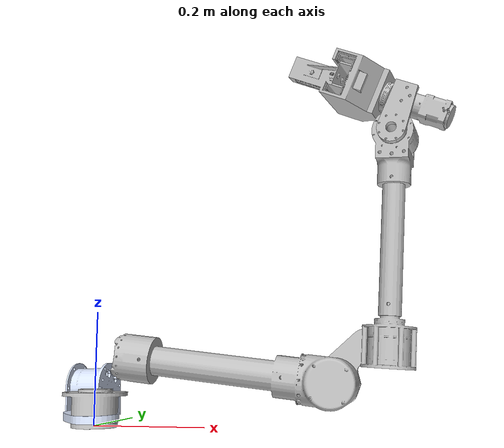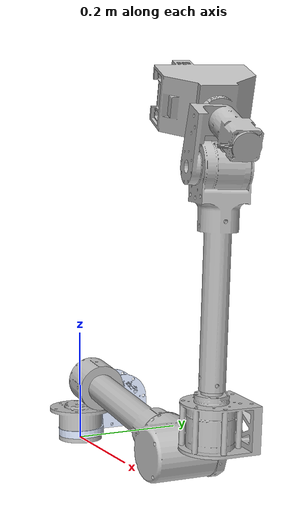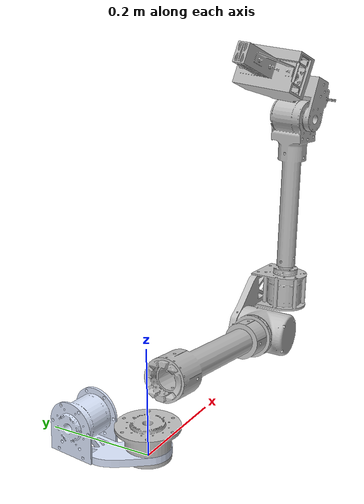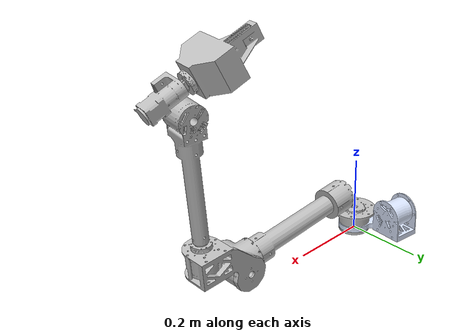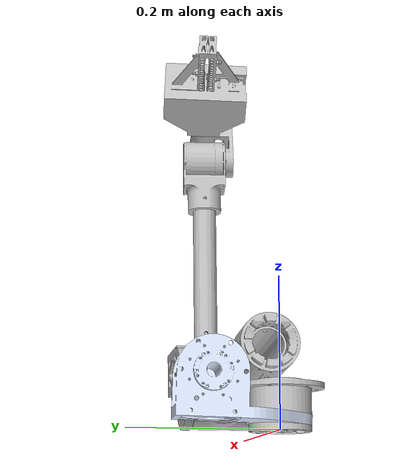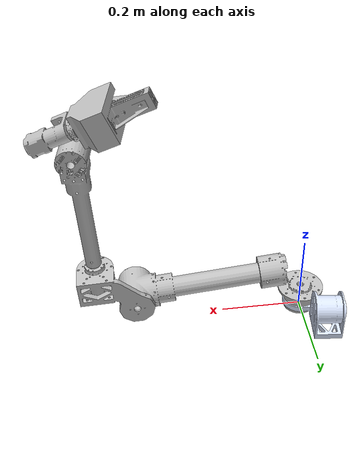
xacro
<?xml version="1.0"?>
<robot xmlns:xacro="http://www.ros.org/wiki/xacro" name="plex_arm_urdf">
    <xacro:arg name="initial_positions_file" default="initial_positions.yaml" />

    <!-- Import plex_arm_urdf urdf file -->
    <xacro:include filename="$(find plex_arm_urdf)/urdf/plex_arm_urdf.urdf.xacro" />

    <!-- Import control_xacro -->
    <xacro:include filename="plex_arm_urdf.ros2_control.xacro" />

    <xacro:plex_arm_urdf_ros2_control name="FakeSystem" initial_positions_file="$(arg initial_positions_file)"/>

</robot>

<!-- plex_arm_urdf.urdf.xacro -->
<robot name="plex_arm_urdf" xmlns:xacro="http://www.ros.org/wiki/xacro">

  <xacro:property name="mesh_pkg"  value="plex_arm_urdf" />
  <xacro:property name="grey_rgba" value="0.752941176470588 0.752941176470588 0.752941176470588 1" />
  <xacro:property name="blue_rgba" value="0.866666666666667 0.909803921568627 1 1" />

  <xacro:macro name="mesh_link" params="link_name colour_rgba">
    <visual>
      <origin xyz="0 0 0" rpy="0 0 0" />
      <geometry>
        <mesh filename="package://${mesh_pkg}/meshes/${link_name}.STL" />
      </geometry>
      <material name="">
        <color rgba="${colour_rgba}" />
      </material>
    </visual>
    <collision>
      <origin xyz="0 0 0" rpy="0 0 0" />
      <geometry>
        <mesh filename="package://${mesh_pkg}/meshes/${link_name}.STL" />
      </geometry>
    </collision>
  </xacro:macro>

  <link name="base_link">
    <inertial>
      <origin xyz="-2.24668715474809E-05 -1.58257547080611E-05 0.0374605334330578" rpy="0 0 0" />
      <mass value="0.399162910599266" />
      <inertia ixx="0.000324848144008975" ixy="5.02496168934537E-08"  ixz="-2.2819307788846E-07"
               iyy="0.00032521829975329"  iyz="-1.86758735473255E-07" izz="0.000486670512636318" />
    </inertial>
    <xacro:mesh_link link_name="base_link" colour_rgba="${grey_rgba}" />
  </link>

  <link name="link_2">
    <inertial>
      <origin xyz="0.00211380693052461 -0.0163292010184428 0.0524617953309156" rpy="0 0 0" />
      <mass value="1.01328478920139" />
      <inertia ixx="0.0014335374796131"   ixy="-1.42034367565708E-05" ixz="7.59212417839802E-06"
               iyy="0.00149901585148594"  iyz="0.000123243816752311"  izz="0.00141887427830969" />
    </inertial>
    <xacro:mesh_link link_name="link_2" colour_rgba="${blue_rgba}" />
  </link>

  <link name="link_3">
    <inertial>
      <origin xyz="0.26754 0.053738 -0.031859" rpy="0 0 0" />
      <mass value="1.3505" />
      <inertia ixx="0.0013405"  ixy="4.1403E-05"  ixz="0.0002258"
               iyy="0.0032102"  iyz="-5.27E-06"    izz="0.0031982" />
    </inertial>
    <xacro:mesh_link link_name="link_3" colour_rgba="${grey_rgba}" />
  </link>

  <link name="link_4">
    <inertial>
      <origin xyz="0.082946 -0.041589 0.059096" rpy="0 0 0" />
      <mass value="0.53981" />
      <inertia ixx="0.0004222"   ixy="7.614E-06"   ixz="-0.00010509"
               iyy="0.00066838"  iyz="6.346E-06"    izz="0.00062584" />
    </inertial>
    <xacro:mesh_link link_name="link_4" colour_rgba="${grey_rgba}" />
  </link>

  <link name="link_5">
    <inertial>
      <origin xyz="0.0151094033450188 -0.000660974117995889 0.237690494208005" rpy="0 0 0" />
      <mass value="0.564110995014379" />
      <inertia ixx="0.00115592730271326"  ixy="1.67194129071875E-06"  ixz="-5.47681647087195E-05"
               iyy="0.00116861926227325"  iyz="7.97231620979113E-07"  izz="0.000289359064405679" />
    </inertial>
    <xacro:mesh_link link_name="link_5" colour_rgba="${grey_rgba}" />
  </link>

  <link name="link_6">
    <inertial>
      <origin xyz="0.0373459001279738 -0.0166285861789171 0.0396973187118052" rpy="0 0 0" />
      <mass value="0.207074607999115" />
      <inertia ixx="8.79083922357743E-05"  ixy="1.49133619604232E-05"  ixz="2.64731989505346E-05"
               iyy="0.000155579377504894"  iyz="-6.0339185433965E-06"  izz="0.000127872997405193" />
    </inertial>
    <xacro:mesh_link link_name="link_6" colour_rgba="${grey_rgba}" />
  </link>

  <link name="EE_assembly">
    <inertial>
      <origin xyz="-0.0877843844322184 0.0125121324602962 0.0407814380552561" rpy="0 0 0" />
      <mass value="0.553543107403543" />
      <inertia ixx="0.000671410200888766"  ixy="-2.95206570267268E-07"  ixz="3.96900762821728E-05"
               iyy="0.000444631461300533"  iyz="-1.41204972937008E-05"  izz="0.000759972019619152" />
    </inertial>
    <xacro:mesh_link link_name="EE_assembly" colour_rgba="${grey_rgba}" />
  </link>

  <joint name="joint_1" type="continuous">
    <origin xyz="0 0 0.0641" rpy="0 0 0" />
    <parent link="base_link" />
    <child  link="link_2" />
    <axis   xyz="0 0 1" />
  </joint>

  <joint name="joint_2" type="continuous">
    <origin xyz="-0.0016216 -0.058978 0.063" rpy="0 0 0" />
    <parent link="link_2" />
    <child  link="link_3" />
    <axis   xyz="-0.027485 -0.99962 0" />
  </joint>

  <joint name="joint_3" type="continuous">
    <origin xyz="0.42375 0.10171 -0.050398" rpy="0 0 0" />
    <parent link="link_3" />
    <child  link="link_4" />
    <axis   xyz="-0.027485 -0.99962 0" />
  </joint>

  <joint name="joint_4" type="continuous">
    <origin xyz="0.096215 -0.055479 0.11335" rpy="0 0 0" />
    <parent link="link_4" />
    <child  link="link_5" />
    <axis   xyz="0.063628 -0.0017495 0.99797" />
  </joint>

  <joint name="joint_5" type="continuous">
    <origin xyz="0.019526 -0.00053686 0.30625" rpy="0 0 0" />
    <parent link="link_5" />
    <child  link="link_6" />
    <axis   xyz="-0.16576 -0.98613 0.00884" />
  </joint>

  <joint name="joint_6" type="continuous">
    <origin xyz="0.024505 -0.0035377 0.053554" rpy="0 0 0" />
    <parent link="link_6" />
    <child  link="EE_assembly" />
    <axis   xyz="-0.89457 0.15413 0.41952" />
  </joint>

</robot>
